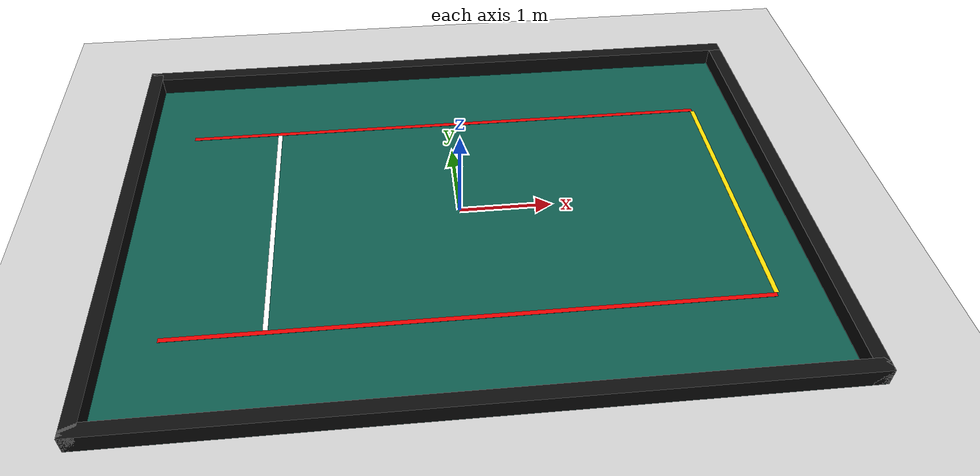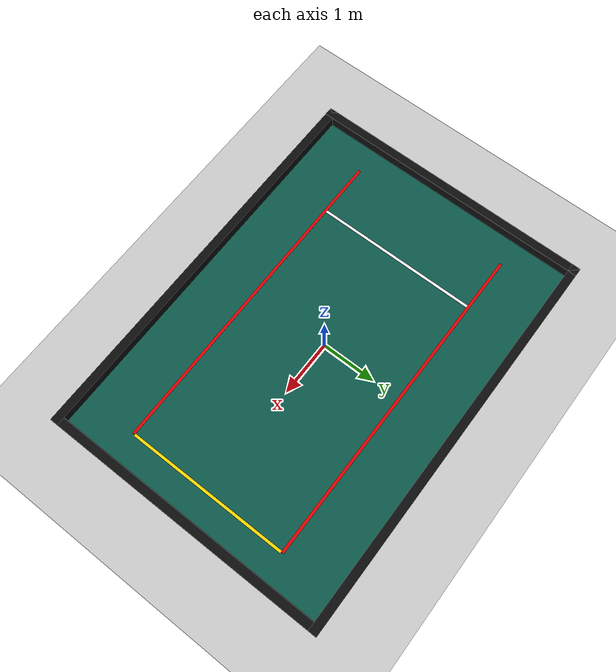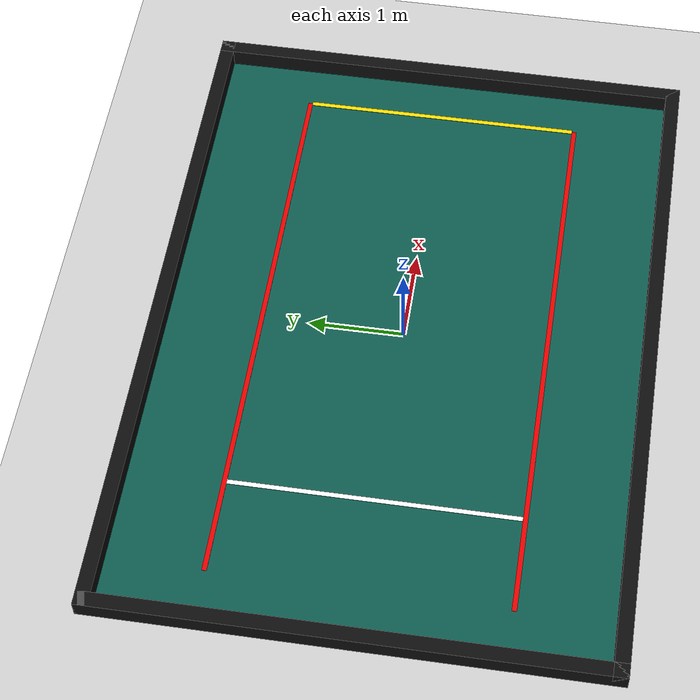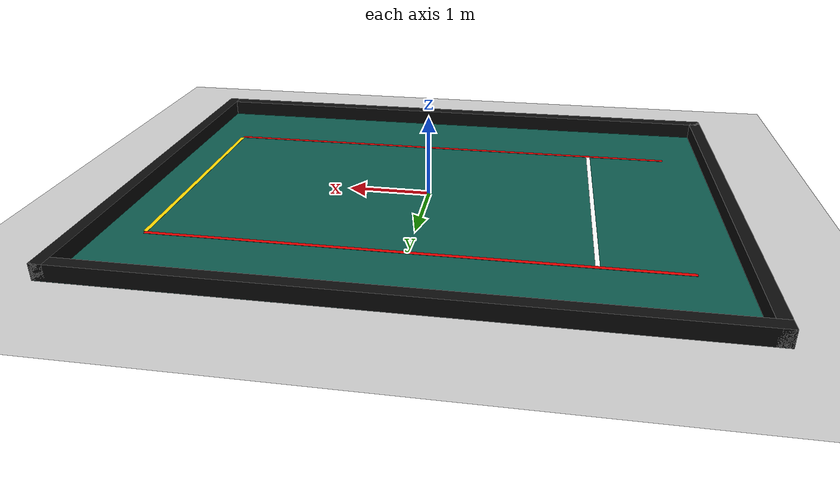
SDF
<?xml version="1.0"?>
<sdf version="1.6">
  <world name="avoid_field">
    <gui fullscreen="0">
      <camera name="user_camera">
        <!-- straight down over the field centre, +x (goal) to the right of the screen -->
        <pose>0.25 0 9 0 1.5707 1.5707</pose>
        <projection_type>orthographic</projection_type>
      </camera>
    </gui>
    <scene>
      <ambient>0.6 0.6 0.6 1</ambient>
      <background>0.85 0.85 0.85 1</background>
      <shadows>false</shadows>
    </scene>
    <include><uri>model://sun</uri></include>
    <include><uri>model://ground_plane</uri></include>

    <model name="field_markings">
      <static>true</static>
      <link name="link">
        <visual name="carpet">
          <pose>0 0 0.001 0 0 0</pose>
          <geometry><box><size>7.25 5.25 0.002</size></box></geometry>
          <material><ambient>0.05 0.35 0.3 1</ambient><diffuse>0.05 0.35 0.3 1</diffuse></material>
        </visual>
        <visual name="red_line_left">
          <pose>0 1.5 0.003 0 0 0</pose>
          <geometry><box><size>6 0.05 0.002</size></box></geometry>
          <material><ambient>0.9 0 0 1</ambient><diffuse>0.9 0 0 1</diffuse></material>
        </visual>
        <visual name="red_line_right">
          <pose>0 -1.5 0.003 0 0 0</pose>
          <geometry><box><size>6 0.05 0.002</size></box></geometry>
          <material><ambient>0.9 0 0 1</ambient><diffuse>0.9 0 0 1</diffuse></material>
        </visual>
        <visual name="start_line">
          <pose>-2.0 0 0.003 0 0 0</pose>
          <geometry><box><size>0.05 2.95 0.002</size></box></geometry>
          <material><ambient>1 1 1 1</ambient><diffuse>1 1 1 1</diffuse></material>
        </visual>
        <visual name="goal_line">
          <pose>3.0 0 0.003 0 0 0</pose>
          <geometry><box><size>0.05 2.95 0.002</size></box></geometry>
          <material><ambient>1 0.85 0 1</ambient><diffuse>1 0.85 0 1</diffuse></material>
        </visual>
      </link>
    </model>

    <model name="low_wall">
      <static>true</static>
      <link name="link">
        <collision name="c_left"><pose>0 2.55 0.1 0 0 0</pose><geometry><box><size>7.25 0.15 0.2</size></box></geometry></collision>
        <collision name="c_right"><pose>0 -2.55 0.1 0 0 0</pose><geometry><box><size>7.25 0.15 0.2</size></box></geometry></collision>
        <collision name="c_back"><pose>-3.55 0 0.1 0 0 0</pose><geometry><box><size>0.15 5.25 0.2</size></box></geometry></collision>
        <collision name="c_front"><pose>3.55 0 0.1 0 0 0</pose><geometry><box><size>0.15 5.25 0.2</size></box></geometry></collision>
        <visual name="v_left"><pose>0 2.55 0.1 0 0 0</pose><geometry><box><size>7.25 0.15 0.2</size></box></geometry>
          <material><ambient>0.05 0.05 0.05 1</ambient><diffuse>0.05 0.05 0.05 1</diffuse></material></visual>
        <visual name="v_right"><pose>0 -2.55 0.1 0 0 0</pose><geometry><box><size>7.25 0.15 0.2</size></box></geometry>
          <material><ambient>0.05 0.05 0.05 1</ambient><diffuse>0.05 0.05 0.05 1</diffuse></material></visual>
        <visual name="v_back"><pose>-3.55 0 0.1 0 0 0</pose><geometry><box><size>0.15 5.25 0.2</size></box></geometry>
          <material><ambient>0.05 0.05 0.05 1</ambient><diffuse>0.05 0.05 0.05 1</diffuse></material></visual>
        <visual name="v_front"><pose>3.55 0 0.1 0 0 0</pose><geometry><box><size>0.15 5.25 0.2</size></box></geometry>
          <material><ambient>0.05 0.05 0.05 1</ambient><diffuse>0.05 0.05 0.05 1</diffuse></material></visual>
      </link>
    </model>
  </world>
</sdf>
